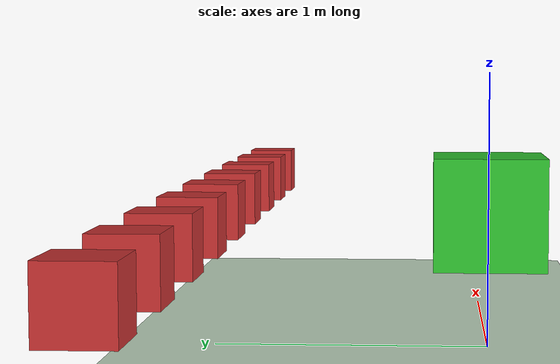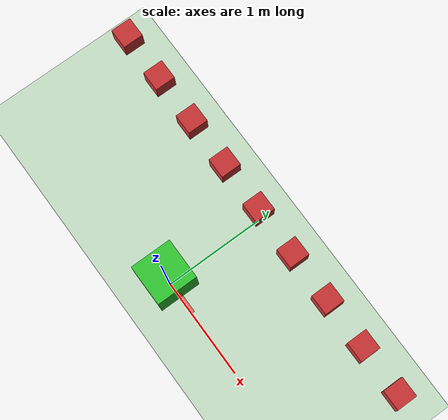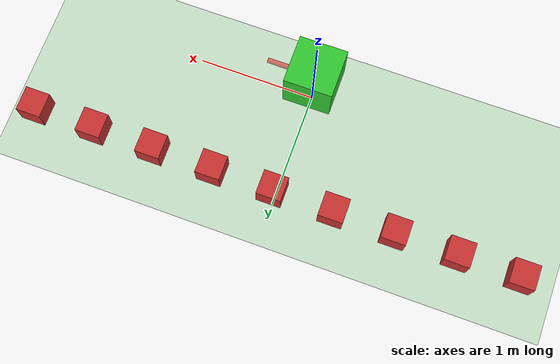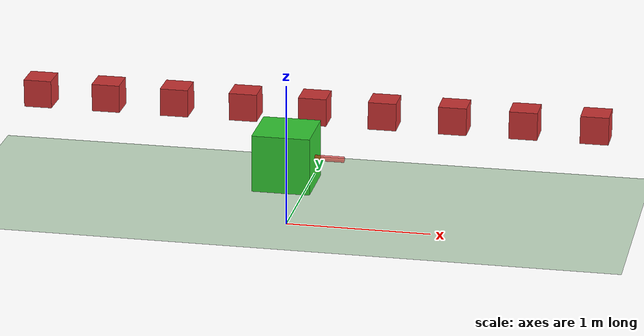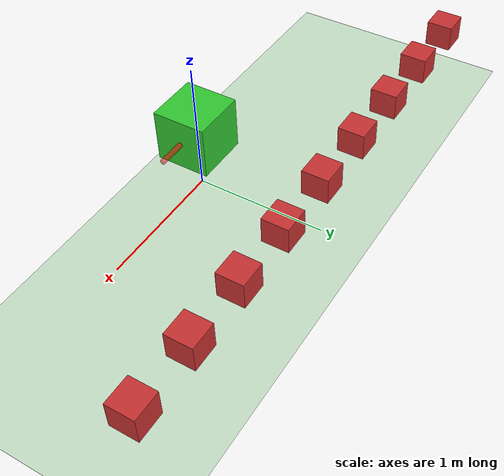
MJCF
<mujoco model="camera_setup_improved">
    <compiler angle="degree"/>
    <option gravity="0 0 -9.81" timestep="0.002"/>

    <worldbody>
        <light pos="0 0 5" dir="0 0 -1" directional="true"/>
        <geom name="ground" type="plane" size="5 5 0.1" rgba="0.8 0.9 0.8 1"/>

        <!-- Fixed camera nhìn xuống và hơi nghiêng -->
        <camera name="fixed_cam" pos="0 -3 2" euler="55 0 0" fovy="60"/>

        <!-- Tracking camera (theo dõi box) -->
        <camera name="tracking_cam" pos="0 -4 3" mode="targetbody" target="moving_box"/>

        <body name="moving_box" pos="0 0 0.5">
            <inertial pos="0 0 0" mass="1" diaginertia="0.01 0.01 0.01"/>
            <joint name="slider" type="slide" axis="1 0 0" range="-2 2" limited="true" damping="2"/>
            <geom name="moving_box_geom" type="box" size="0.2 0.2 0.2" rgba="0.2 0.8 0.2 1"/>

            <!-- Robot camera nhìn theo hướng +X của box -->
            <camera name="robot_cam_forward" pos="0.3 0 0" xyaxes="0 -1 0 0 0 1" fovy="90"/>

            <!-- Robot camera nhìn lên trên -->
            <camera name="robot_cam_up" pos="0 0 2" xyaxes="1 0 0 0 1 0" fovy="90"/>

            <!-- Visual: vẽ hướng camera bằng cylinder nhỏ -->
            <geom type="cylinder" size="0.02 0.15" pos="0.25 0 0"
                  euler="0 90 0" rgba="1 0 0 0.5" contype="0" conaffinity="0"/>
        </body>

        <body name="marker_box" pos="0 0 0.5">
            <geom type="box" size="0.1 0.1 0.1" pos="0 1 0" rgba="0.8 0.2 0.2 1"/>
            <geom type="box" size="0.1 0.1 0.1" pos="-.5 1 0" rgba="0.8 0.2 0.2 1"/>
            <geom type="box" size="0.1 0.1 0.1" pos=".5 1 0" rgba="0.8 0.2 0.2 1"/>
            <geom type="box" size="0.1 0.1 0.1" pos="-1.0 1 0" rgba="0.8 0.2 0.2 1"/>
            <geom type="box" size="0.1 0.1 0.1" pos="1.0 1 0" rgba="0.8 0.2 0.2 1"/>
            <geom type="box" size="0.1 0.1 0.1" pos="-1.5 1 0" rgba="0.8 0.2 0.2 1"/>
            <geom type="box" size="0.1 0.1 0.1" pos="1.5 1 0" rgba="0.8 0.2 0.2 1"/>
            <geom type="box" size="0.1 0.1 0.1" pos="-2.0 1 0" rgba="0.8 0.2 0.2 1"/>
            <geom type="box" size="0.1 0.1 0.1" pos="2.0 1 0" rgba="0.8 0.2 0.2 1"/>
        </body>
    </worldbody>

    <actuator>
        <position name="slide_position" joint="slider" kp="80" ctrlrange="-1.5 1.5" ctrllimited="true"/>
    </actuator>

    <sensor>
        <jointpos name="slider_pos" joint="slider"/>
        <jointvel name="slider_vel" joint="slider"/>
    </sensor>
</mujoco>
